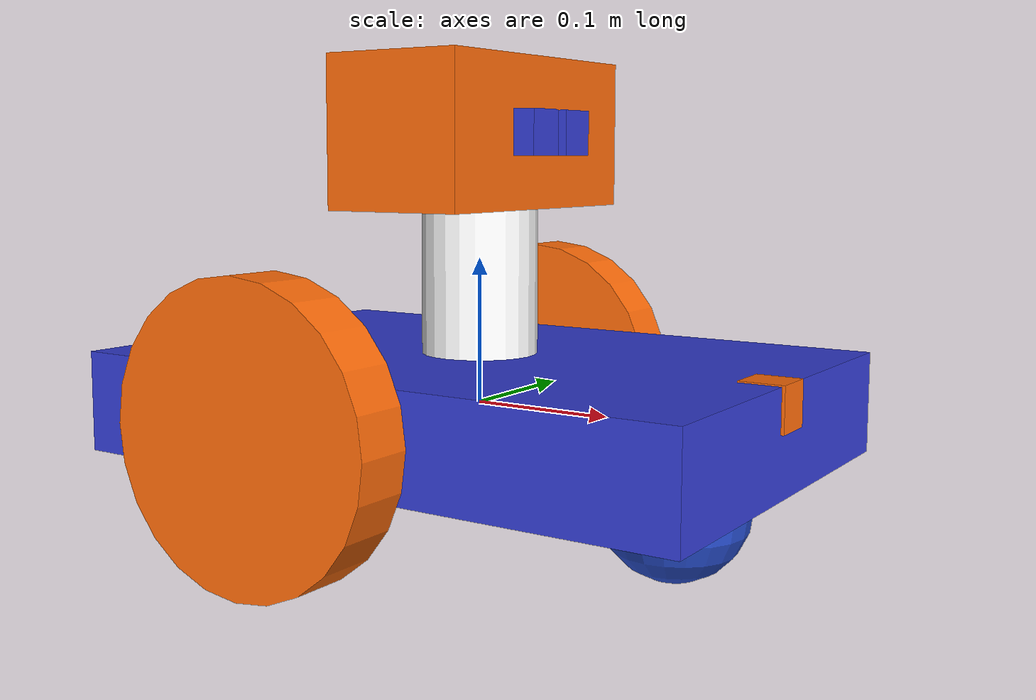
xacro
<?xml version="1.0"?>
<robot xmlns:xacro="http://www.ros.org/wiki/xacro" name="robot_xacro">
<xacro:include filename="$(find exp3)/urdf/robot.gazebo"/>

	<xacro:property name="length_wheel" value="0.04" />
	<xacro:property name="radius_wheel" value="0.1" />

	<xacro:macro name="default_inertial" params="mass">
               <inertial>
                       <mass value="${mass}" />
                       <origin rpy="0 1.5707 1.5707" xyz="0 0 0"/>
                       <inertia ixx="0.000526666666667" ixy="0" ixz="0"
                                iyy="0.000526666666667" iyz="0" izz="0.001"/>
               </inertial>
	</xacro:macro>

    <xacro:macro name="wheel_geometry">
		<geometry>
       			<cylinder length="${length_wheel}" radius="${radius_wheel}"/>
     	</geometry>
	</xacro:macro>

  <material name="black">
    <color rgba="0.0 0.0 0.0 1.0"/>
  </material>
  <material name="blue">
    <color rgba="0.203125 0.23828125 0.82515625 1.0"/>
  </material>
  <material name="green">
    <color rgba="0.0 0.8 0.0 1.0"/>
  </material>
  <material name="grey">
    <color rgba="0.2 0.2 0.2 1.0"/>
  </material>
  <material name="orange">
    <color rgba="1.0 0.423529411765 0.0392156862745 1.0"/>
  </material>
  <material name="brown">
    <color rgba="0.870588235294 0.811764705882 0.764705882353 1.0"/>
  </material>
  <material name="red">
    <color rgba="0.80078125 0.12890625 0.1328125 1.0"/>
  </material>
  <material name="white">
    <color rgba="1.0 1.0 1.0 1.0"/>
  </material>

	<link name="link_chassis">
    <!-- pose and inertial -->
    <pose>0 0 0.1 0 0 0</pose>
    <inertial>
      <mass value="5"/>
      <origin rpy="0 0 0" xyz="0 0 0.1"/>
      <inertia ixx="0.0395416666667" ixy="0" ixz="0"
               iyy="0.106208333333" iyz="0" izz="0.106208333333"/>
    </inertial>
    <!-- body -->
    <collision name="collision_chassis">
      <geometry>
        <box size="0.45 0.3 0.07"/>
      </geometry>
    </collision>
    <visual>
      <origin rpy="0 0 0" xyz="0 0 0"/>
      <geometry>
        <box size="0.45 0.3 0.07"/>
      </geometry>
      <material name="blue"/>
    </visual>
    <!-- caster front -->
    <collision name="caster_front_collision">
      <origin rpy="0 0 0" xyz="0.35 0 -0.05"/>
      <geometry>
        <sphere radius="0.05"/>
      </geometry>
    </collision>
    <visual name="caster_front_visual">
      <origin rpy="0 0 0" xyz="0.15 0 -0.05"/>
      <geometry>
        <sphere radius="0.05"/>
      </geometry>
    </visual>
  </link>

   <link name="link_right_wheel">
    <xacro:default_inertial mass="0.2"/>
    <collision name="link_right_wheel_collision">
      <origin rpy="0 1.5707 1.5707" xyz="0 0 0"/>
      <xacro:wheel_geometry />
    </collision>
    <visual name="link_right_wheel_visual">
      <origin rpy="0 1.5707 1.5707" xyz="0 0 0"/>
      <xacro:wheel_geometry />
      <material name="orange"/>
    </visual>
  </link>

   <link name="link_left_wheel">
    <xacro:default_inertial mass="0.2"/>
    <collision name="link_left_wheel_collision">
      <origin rpy="0 1.5707 1.5707" xyz="0 0 0"/>
      <xacro:wheel_geometry />
    </collision>
    <visual name="link_left_wheel_visual">
      <origin rpy="0 1.5707 1.5707" xyz="0 0 0"/>
      <xacro:wheel_geometry />
      <material name="orange"/>
    </visual>
  </link>

  <link name="link_neck">
    <xacro:default_inertial mass="0.2"/>
    <collision name="link_neck_collision">
      <origin rpy="1.5707 1.5707 0" xyz="0 0.05 0"/>
      <geometry>
        <cylinder length="0.1" radius="0.04"/>
      </geometry>
    </collision>
    <visual name="link_neck_visual">
      <origin rpy="1.5707 1.5707 0" xyz="0 0.05 0"/>
      <geometry>
        <cylinder length="0.1" radius="0.04"/>
      </geometry>
      <material name="white"/>
    </visual>
  </link>

  <link name="link_head">
    <xacro:default_inertial mass="0.2"/>
	    <collision>
	      <origin xyz="0 0 0" rpy="0 0 0"/>
	      <geometry>
		      <box size="0.1 0.1 0.2"/>
	      </geometry>
	    </collision>
	    <visual>
	      <origin xyz="0 0 0" rpy="0 0 0"/>
	      <geometry>
		      <box size="0.1 0.1 0.2"/>
	      </geometry>
	      <material name="orange">
	      </material>
	    </visual>
  </link>

  <link name="camera_link">
	    <collision>
	      <origin xyz="0 0 0" rpy="0 0 0"/>
	      <geometry>
		<box size="0.03 0.03 0.03"/>
	      </geometry>
	    </collision>
	    <visual>
	      <origin xyz="0 0 0" rpy="0 0 0"/>
	      <geometry>
		<box size="0.03 0.03 0.03"/>
	      </geometry>
	      <material name="blue">
	      </material>
	    </visual>
	    <inertial>
	      <mass value="1e-5"/>
	      <origin xyz="0 0 0" rpy="0 0 0"/>
	      <inertia ixx="1e-6" ixy="0" ixz="0" iyy="1e-6" iyz="0" izz="1e-6"/>
	    </inertial>
  </link>

  <link name="laser_link">
	    <collision>
	      <origin xyz="0 0 0" rpy="0 0 0"/>
	      <geometry>
		<box size="0.03 0.03 0.03"/>
	      </geometry>
	    </collision>
	    <visual>
	      <origin xyz="0 0 0" rpy="0 0 0"/>
	      <geometry>
		<box size="0.03 0.03 0.03"/>
	      </geometry>
	      <material name="orange">
	      </material>
	    </visual>
	    <inertial>
	      <mass value="1e-5"/>
	      <origin xyz="0 0 0" rpy="0 0 0"/>
	      <inertia ixx="1e-6" ixy="0" ixz="0" iyy="1e-6" iyz="0" izz="1e-6"/>
	    </inertial>
  </link>

  <link name="link_eye">
	    <collision>
	      <origin xyz="0 0 0" rpy="0 0 0"/>
	      <geometry>
		<box size="0.03 0.03 0.03"/>
	      </geometry>
	    </collision>
	    <visual>
	      <origin xyz="0 0 0" rpy="0 0 0"/>
	      <geometry>
		<box size="0.03 0.03 0.03"/>
	      </geometry>
	      <material name="blue">
	      </material>
	    </visual>
	    <inertial>
	      <mass value="1e-5"/>
	      <origin xyz="0 0 0" rpy="0 0 0"/>
	      <inertia ixx="1e-6" ixy="0" ixz="0" iyy="1e-6" iyz="0" izz="1e-6"/>
	    </inertial>
  </link>

  <joint name="joint_neck" type="fixed">
    <origin rpy="1.5707 0 0" xyz="0 0 0.035"/>
    <child link="link_neck"/>
    <parent link="link_chassis"/>
    <axis rpy="0 0 0" xyz="0 0 0"/>
  </joint>

  <joint name="joint_right_wheel" type="continuous">
    <origin rpy="0 0 0" xyz="-0.05 0.17 0"/>
    <child link="link_right_wheel"/>
    <parent link="link_chassis"/>
    <axis rpy="0 0 0" xyz="0 1 0"/>
    <limit effort="10000" velocity="1000"/>
    <joint_properties damping="1.0" friction="1.0"/>
  </joint>

  <joint name="joint_left_wheel" type="continuous">
    <origin rpy="0 0 0" xyz="-0.05 -0.17 0"/>
    <child link="link_left_wheel"/>
    <parent link="link_chassis"/>
    <axis rpy="0 0 0" xyz="0 1 0"/>
    <limit effort="10000" velocity="1000"/>
    <joint_properties damping="1.0" friction="1.0"/>
  </joint>

  <joint name="head_joint" type="fixed">
      <axis xyz="0 1 0"/>
	    <origin xyz="0 0.15 0" rpy="0 0 0"/>
	    <parent link="link_neck"/>
	    <child link="link_head"/>
	</joint>

  <joint name="camera_joint" type="fixed">
      <axis xyz="0 1 0"/>
      <origin xyz="0.05 0 -0.02" rpy="-1.5707 0 0"/> <!-- left eye of the robot (camera) -->
	    <parent link="link_head"/>
	    <child link="camera_link"/>
	</joint>

  <joint name="eye_joint" type="fixed">
      <axis xyz="0 1 0"/>
      <origin xyz="0.05 0 0.02" rpy="-1.5707 0 0"/> <!-- right eye of the robot (empty) -->
	    <parent link="link_head"/>
	    <child link="link_eye"/>
	</joint>

  <joint name="laser_joint" type="fixed">
      <axis xyz="0 1 0"/>
      <origin xyz="0.212 0 0.021" rpy="0 0 0"/>
	    <parent link="link_chassis"/>
	    <child link="laser_link"/>
	</joint>

</robot>
